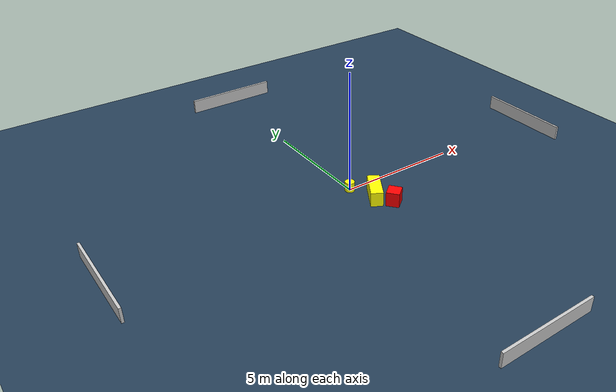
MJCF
<?xml version="1.0" ?>
<mujoco model="generated_environment">
  <option timestep="0.01" integrator="RK4" cone="elliptic"/>
  <default>
    <geom density="1"/>
  </default>
  <asset>
    <texture builtin="gradient" height="3072" name="skybox" rgb1="0.3 0.5 0.7" rgb2="0 0 0" type="skybox" width="512"/>
    <texture builtin="checker" height="300" name="groundplane" rgb1="0.2 0.3 0.4" rgb2="0.1 0.2 0.3" type="2d" width="300"/>
    <material name="groundplane" reflectance="0.2" texrepeat="5 5" texture="groundplane"/>
  </asset>
  <worldbody>
    <light dir="0 0 -1" directional="true" pos="0 0 1.5"/>
    <geom condim="3" friction="0.5 0.005 0.001" material="groundplane" name="floor" pos="0 0 0" size="0 0 0.05" type="plane"/>
    <body name="walls">
      <geom name="wall_1" condim="4" pos="-10.0 0.0 0.3" rgba="0.800000011920929 0.800000011920929 0.800000011920929 1.0" size="0.05 2.0 0.3" type="box"/>
      <geom name="wall_2" condim="4" pos="10.0 0.0 0.3" rgba="0.800000011920929 0.800000011920929 0.800000011920929 1.0" size="0.05 2.0 0.3" type="box"/>
      <geom name="wall_3" condim="4" pos="0.0 -10.0 0.3" rgba="0.800000011920929 0.800000011920929 0.800000011920929 1.0" size="2.0 0.05 0.3" type="box"/>
      <geom name="wall_4" condim="4" pos="0.0 10.0 0.3" rgba="0.800000011920929 0.800000011920929 0.800000011920929 1.0" size="2.0 0.05 0.3" type="box"/>
    </body>
    <body name="robot">
      <joint name="joint_x" type="slide" pos="0 0 0" axis="1 0 0"/>
      <joint name="joint_y" type="slide" pos="0 0 0" axis="0 1 0"/>
      <geom name="robot" type="cylinder" pos="0.0 0.0 0.2" size="0.2 0.2 0.0" mass="5.0" friction="1.0 0.005 0.0001" condim="4" rgba="1.0 1.0 0.0 1.0"/>
    </body>
    <body name="obstacle_1_movable">
      <geom name="obstacle_1_movable" condim="4" pos="0.501461046648693 -0.9804315395394618 0.3" euler="0 0 59.46439706072005" friction="0.0 0.005 0.001" rgba="1.0 1.0 0.0 1.0" size="0.6600315154594447 0.24598310230058656 0.3" type="box" mass="0.1"/>
      <joint type="free"/>
    </body>
    <body name="obstacle_2_static">
      <geom name="obstacle_2_static" condim="4" pos="0.8407063219504439 -1.7402826038006114 0.3" euler="0 0 218.66213345046896" friction="0.0 0.005 0.001" rgba="1.0 0.0 0.0 1.0" size="0.27959018664762103 0.2664240254578274 0.3" type="box"/>
    </body>
  </worldbody>
  <actuator>
    <motor name="actuator_x" joint="joint_x" gear="1" ctrlrange="-1 1"/>
    <motor name="actuator_y" joint="joint_y" gear="1" ctrlrange="-1 1"/>
  </actuator>
</mujoco>
